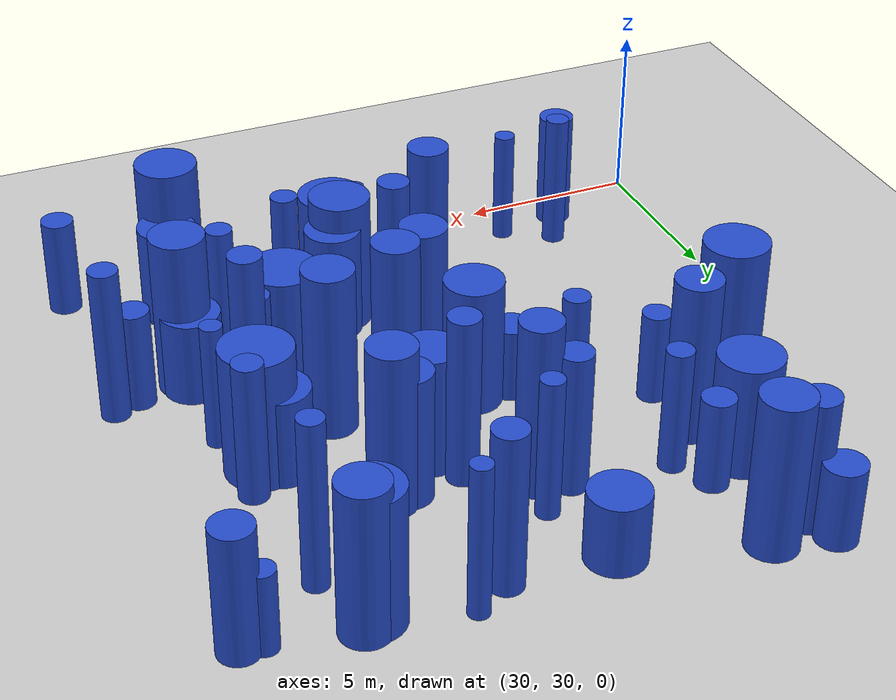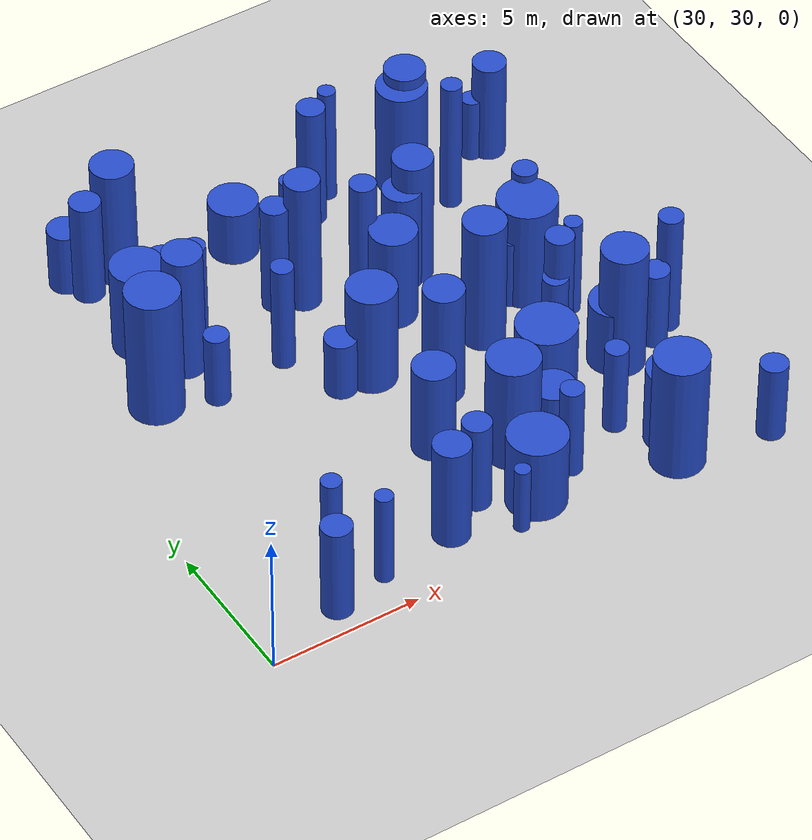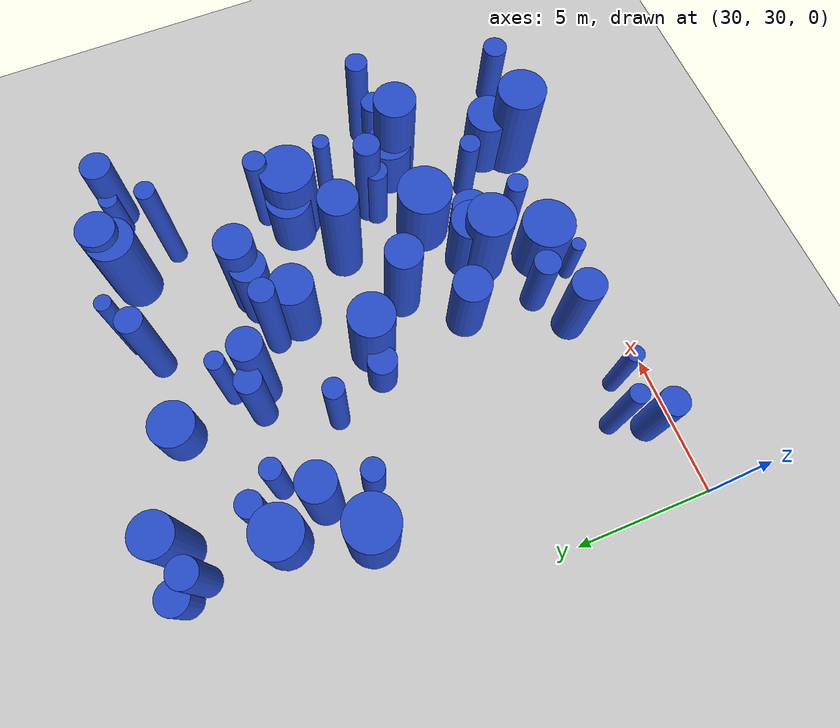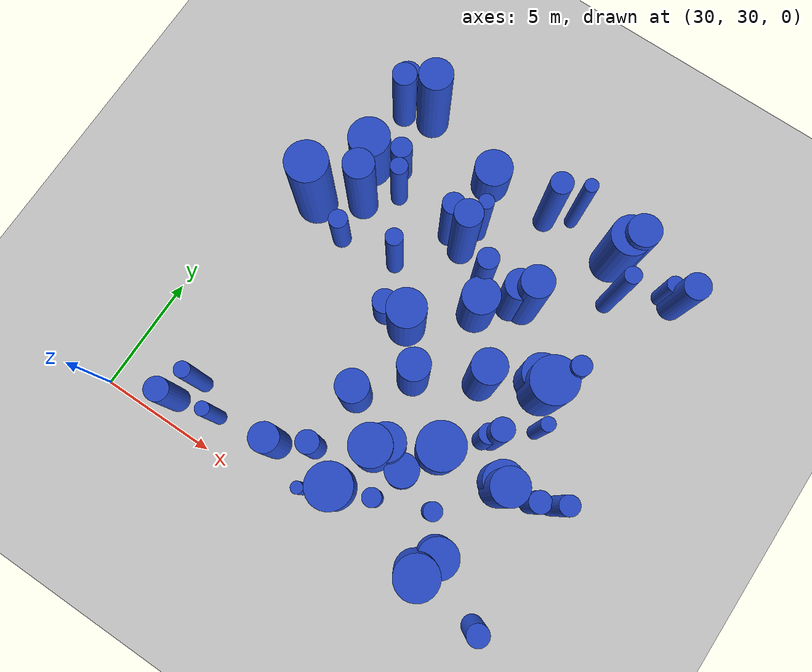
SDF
<sdf version="1.6">
 <world name="default">
  <model name="ground_plane">
   <static>1</static>
   <link name="link">
    <collision name="collision">
     <geometry><plane><normal>0 0 1</normal><size>100 100</size></plane></geometry>
     <surface><friction><ode><mu>100</mu><mu2>50</mu2></ode></friction></surface>
    </collision>
    <visual name="visual">
     <cast_shadows>0</cast_shadows>
     <geometry><plane><normal>0 0 1</normal><size>100 100</size></plane></geometry>
     <material>
      <script><uri>file://media/materials/scripts/gazebo.material</uri><name>Gazebo/Grey</name></script>
     </material>
    </visual>
   </link>
  </model>
  <model name="1">
   <static>0</static>
   <link name="link">
    <inertial>
     <mass>2</mass>
     <inertia><ixx>4.03627</ixx><ixy>0</ixy><ixz>0</ixz><iyy>4.03627</iyy><iyz>0</iyz><izz>0.190273</izz></inertia>
    </inertial>
    <collision name="collision">
     <geometry><cylinder><length>4.86279</length><radius>0.436203</radius></cylinder></geometry>
     <surface><contact><collide_without_contact>1</collide_without_contact></contact></surface>
    </collision>
    <visual name="visual">
     <geometry><cylinder><length>4.86279</length><radius>0.436203</radius></cylinder></geometry>
     <material>
      <script><uri>file://media/materials/scripts/gazebo.material</uri><name>Gazebo/Blue</name></script>
     </material>
    </visual>
    <gravity>0</gravity>
   </link>
   <pose>40.5806 41.9272 2.4314 0 -0 0</pose>
  </model>
  <model name="6">
   <static>0</static>
   <link name="link">
    <inertial>
     <mass>2</mass>
     <inertia><ixx>1.45049</ixx><ixy>0</ixy><ixz>0</ixz><iyy>1.45049</iyy><iyz>0</iyz><izz>0.206698</izz></inertia>
    </inertial>
    <collision name="collision">
     <geometry><cylinder><length>2.84303</length><radius>0.454641</radius></cylinder></geometry>
     <surface><contact><collide_without_contact>1</collide_without_contact></contact></surface>
    </collision>
    <visual name="visual">
     <geometry><cylinder><length>2.84303</length><radius>0.454641</radius></cylinder></geometry>
     <material>
      <script><uri>file://media/materials/scripts/gazebo.material</uri><name>Gazebo/Blue</name></script>
     </material>
    </visual>
    <gravity>0</gravity>
   </link>
   <pose>47.896 30.2729 1.42152 0 -0 0</pose>
  </model>
  <model name="35">
   <static>0</static>
   <link name="link">
    <inertial>
     <mass>2</mass>
     <inertia><ixx>4.21675</ixx><ixy>0</ixy><ixz>0</ixz><iyy>4.21675</iyy><iyz>0</iyz><izz>0.78183</izz></inertia>
    </inertial>
    <collision name="collision">
     <geometry><cylinder><length>4.79114</length><radius>0.884211</radius></cylinder></geometry>
     <surface><contact><collide_without_contact>1</collide_without_contact></contact></surface>
    </collision>
    <visual name="visual">
     <geometry><cylinder><length>4.79114</length><radius>0.884211</radius></cylinder></geometry>
     <material>
      <script><uri>file://media/materials/scripts/gazebo.material</uri><name>Gazebo/Blue</name></script>
     </material>
    </visual>
    <gravity>0</gravity>
   </link>
   <pose>32.6922 41.2787 2.39557 0 -0 0</pose>
  </model>
  <model name="36">
   <static>0</static>
   <link name="link">
    <inertial>
     <mass>2</mass>
     <inertia><ixx>2.9244</ixx><ixy>0</ixy><ixz>0</ixz><iyy>2.9244</iyy><iyz>0</iyz><izz>0.736061</izz></inertia>
    </inertial>
    <collision name="collision">
     <geometry><cylinder><length>3.9164</length><radius>0.85794</radius></cylinder></geometry>
     <surface><contact><collide_without_contact>1</collide_without_contact></contact></surface>
    </collision>
    <visual name="visual">
     <geometry><cylinder><length>3.9164</length><radius>0.85794</radius></cylinder></geometry>
     <material>
      <script><uri>file://media/materials/scripts/gazebo.material</uri><name>Gazebo/Blue</name></script>
     </material>
    </visual>
    <gravity>0</gravity>
   </link>
   <pose>40.7714 33.7648 1.9582 0 -0 0</pose>
  </model>
  <model name="41">
   <static>0</static>
   <link name="link">
    <inertial>
     <mass>2</mass>
     <inertia><ixx>1.78705</ixx><ixy>0</ixy><ixz>0</ixz><iyy>1.78705</iyy><iyz>0</iyz><izz>0.141727</izz></inertia>
    </inertial>
    <collision name="collision">
     <geometry><cylinder><length>3.20891</length><radius>0.376467</radius></cylinder></geometry>
     <surface><contact><collide_without_contact>1</collide_without_contact></contact></surface>
    </collision>
    <visual name="visual">
     <geometry><cylinder><length>3.20891</length><radius>0.376467</radius></cylinder></geometry>
     <material>
      <script><uri>file://media/materials/scripts/gazebo.material</uri><name>Gazebo/Blue</name></script>
     </material>
    </visual>
    <gravity>0</gravity>
   </link>
   <pose>44.0414 33.0618 1.60446 0 -0 0</pose>
  </model>
  <model name="57">
   <static>0</static>
   <link name="link">
    <inertial>
     <mass>2</mass>
     <inertia><ixx>2.77459</ixx><ixy>0</ixy><ixz>0</ixz><iyy>2.77459</iyy><iyz>0</iyz><izz>0.103834</izz></inertia>
    </inertial>
    <collision name="collision">
     <geometry><cylinder><length>4.04179</length><radius>0.322234</radius></cylinder></geometry>
     <surface><contact><collide_without_contact>1</collide_without_contact></contact></surface>
    </collision>
    <visual name="visual">
     <geometry><cylinder><length>4.04179</length><radius>0.322234</radius></cylinder></geometry>
     <material>
      <script><uri>file://media/materials/scripts/gazebo.material</uri><name>Gazebo/Blue</name></script>
     </material>
    </visual>
    <gravity>0</gravity>
   </link>
   <pose>39.2208 44.0549 2.02089 0 -0 0</pose>
  </model>
  <model name="59">
   <static>0</static>
   <link name="link">
    <inertial>
     <mass>2</mass>
     <inertia><ixx>3.58918</ixx><ixy>0</ixy><ixz>0</ixz><iyy>3.58918</iyy><iyz>0</iyz><izz>0.215934</izz></inertia>
    </inertial>
    <collision name="collision">
     <geometry><cylinder><length>4.57026</length><radius>0.464687</radius></cylinder></geometry>
     <surface><contact><collide_without_contact>1</collide_without_contact></contact></surface>
    </collision>
    <visual name="visual">
     <geometry><cylinder><length>4.57026</length><radius>0.464687</radius></cylinder></geometry>
     <material>
      <script><uri>file://media/materials/scripts/gazebo.material</uri><name>Gazebo/Blue</name></script>
     </material>
    </visual>
    <gravity>0</gravity>
   </link>
   <pose>41.2828 46.1145 2.28513 0 -0 0</pose>
  </model>
  <model name="69">
   <static>0</static>
   <link name="link">
    <inertial>
     <mass>2</mass>
     <inertia><ixx>2.64147</ixx><ixy>0</ixy><ixz>0</ixz><iyy>2.64147</iyy><iyz>0</iyz><izz>0.663706</izz></inertia>
    </inertial>
    <collision name="collision">
     <geometry><cylinder><length>3.72259</length><radius>0.814681</radius></cylinder></geometry>
     <surface><contact><collide_without_contact>1</collide_without_contact></contact></surface>
    </collision>
    <visual name="visual">
     <geometry><cylinder><length>3.72259</length><radius>0.814681</radius></cylinder></geometry>
     <material>
      <script><uri>file://media/materials/scripts/gazebo.material</uri><name>Gazebo/Blue</name></script>
     </material>
    </visual>
    <gravity>0</gravity>
   </link>
   <pose>38.9608 38.8646 1.8613 0 -0 0</pose>
  </model>
  <model name="83">
   <static>0</static>
   <link name="link">
    <inertial>
     <mass>2</mass>
     <inertia>
      <ixx>0.968813</ixx>
      <ixy>0</ixy>
      <ixz>0</ixz>
      <iyy>0.968813</iyy>
      <iyz>0</iyz>
      <izz>0.493348</izz>
     </inertia>
    </inertial>
    <collision name="collision">
     <geometry><cylinder><length>2.08155</length><radius>0.702387</radius></cylinder></geometry>
     <surface><contact><collide_without_contact>1</collide_without_contact></contact></surface>
    </collision>
    <visual name="visual">
     <geometry><cylinder><length>2.08155</length><radius>0.702387</radius></cylinder></geometry>
     <material>
      <script><uri>file://media/materials/scripts/gazebo.material</uri><name>Gazebo/Blue</name></script>
     </material>
    </visual>
    <gravity>0</gravity>
   </link>
   <pose>42.2079 33.7163 1.04077 0 -0 0</pose>
  </model>
  <model name="85">
   <static>0</static>
   <link name="link">
    <inertial>
     <mass>2</mass>
     <inertia><ixx>2.60026</ixx><ixy>0</ixy><ixz>0</ixz><iyy>2.60026</iyy><iyz>0</iyz><izz>0.409389</izz></inertia>
    </inertial>
    <collision name="collision">
     <geometry><cylinder><length>3.79122</length><radius>0.639835</radius></cylinder></geometry>
     <surface><contact><collide_without_contact>1</collide_without_contact></contact></surface>
    </collision>
    <visual name="visual">
     <geometry><cylinder><length>3.79122</length><radius>0.639835</radius></cylinder></geometry>
     <material>
      <script><uri>file://media/materials/scripts/gazebo.material</uri><name>Gazebo/Blue</name></script>
     </material>
    </visual>
    <gravity>0</gravity>
   </link>
   <pose>42.1021 42.0806 1.89561 0 -0 0</pose>
  </model>
  <model name="89">
   <static>0</static>
   <link name="link">
    <inertial>
     <mass>2</mass>
     <inertia><ixx>3.96384</ixx><ixy>0</ixy><ixz>0</ixz><iyy>3.96384</iyy><iyz>0</iyz><izz>0.43913</izz></inertia>
    </inertial>
    <collision name="collision">
     <geometry><cylinder><length>4.73979</length><radius>0.662669</radius></cylinder></geometry>
     <surface><contact><collide_without_contact>1</collide_without_contact></contact></surface>
    </collision>
    <visual name="visual">
     <geometry><cylinder><length>4.73979</length><radius>0.662669</radius></cylinder></geometry>
     <material>
      <script><uri>file://media/materials/scripts/gazebo.material</uri><name>Gazebo/Blue</name></script>
     </material>
    </visual>
    <gravity>0</gravity>
   </link>
   <pose>42.6006 42.2495 2.3699 0 -0 0</pose>
  </model>
  <model name="107">
   <static>0</static>
   <link name="link">
    <inertial>
     <mass>2</mass>
     <inertia><ixx>2.51062</ixx><ixy>0</ixy><ixz>0</ixz><iyy>2.51062</iyy><iyz>0</iyz><izz>0.36402</izz></inertia>
    </inertial>
    <collision name="collision">
     <geometry><cylinder><length>3.73787</length><radius>0.603341</radius></cylinder></geometry>
     <surface><contact><collide_without_contact>1</collide_without_contact></contact></surface>
    </collision>
    <visual name="visual">
     <geometry><cylinder><length>3.73787</length><radius>0.603341</radius></cylinder></geometry>
     <material>
      <script><uri>file://media/materials/scripts/gazebo.material</uri><name>Gazebo/Blue</name></script>
     </material>
    </visual>
    <gravity>0</gravity>
   </link>
   <pose>37.3003 31.7893 1.86893 0 -0 0</pose>
  </model>
  <model name="120">
   <static>0</static>
   <link name="link">
    <inertial>
     <mass>2</mass>
     <inertia><ixx>2.98502</ixx><ixy>0</ixy><ixz>0</ixz><iyy>2.98502</iyy><iyz>0</iyz><izz>0.697488</izz></inertia>
    </inertial>
    <collision name="collision">
     <geometry><cylinder><length>3.97714</length><radius>0.835157</radius></cylinder></geometry>
     <surface><contact><collide_without_contact>1</collide_without_contact></contact></surface>
    </collision>
    <visual name="visual">
     <geometry><cylinder><length>3.97714</length><radius>0.835157</radius></cylinder></geometry>
     <material>
      <script><uri>file://media/materials/scripts/gazebo.material</uri><name>Gazebo/Blue</name></script>
     </material>
    </visual>
    <gravity>0</gravity>
   </link>
   <pose>44.6255 46.0701 1.98857 0 -0 0</pose>
  </model>
  <model name="137">
   <static>0</static>
   <link name="link">
    <inertial>
     <mass>2</mass>
     <inertia><ixx>2.55399</ixx><ixy>0</ixy><ixz>0</ixz><iyy>2.55399</iyy><iyz>0</iyz><izz>0.260418</izz></inertia>
    </inertial>
    <collision name="collision">
     <geometry><cylinder><length>3.81349</length><radius>0.510311</radius></cylinder></geometry>
     <surface><contact><collide_without_contact>1</collide_without_contact></contact></surface>
    </collision>
    <visual name="visual">
     <geometry><cylinder><length>3.81349</length><radius>0.510311</radius></cylinder></geometry>
     <material>
      <script><uri>file://media/materials/scripts/gazebo.material</uri><name>Gazebo/Blue</name></script>
     </material>
    </visual>
    <gravity>0</gravity>
   </link>
   <pose>33.5214 46.825 1.90674 0 -0 0</pose>
  </model>
  <model name="141">
   <static>0</static>
   <link name="link">
    <inertial>
     <mass>2</mass>
     <inertia><ixx>2.30961</ixx><ixy>0</ixy><ixz>0</ixz><iyy>2.30961</iyy><iyz>0</iyz><izz>0.6002</izz></inertia>
    </inertial>
    <collision name="collision">
     <geometry><cylinder><length>3.47233</length><radius>0.774725</radius></cylinder></geometry>
     <surface><contact><collide_without_contact>1</collide_without_contact></contact></surface>
    </collision>
    <visual name="visual">
     <geometry><cylinder><length>3.47233</length><radius>0.774725</radius></cylinder></geometry>
     <material>
      <script><uri>file://media/materials/scripts/gazebo.material</uri><name>Gazebo/Blue</name></script>
     </material>
    </visual>
    <gravity>0</gravity>
   </link>
   <pose>41.0566 40.9389 1.73616 0 -0 0</pose>
  </model>
  <model name="143">
   <static>0</static>
   <link name="link">
    <inertial>
     <mass>2</mass>
     <inertia><ixx>2.1021</ixx><ixy>0</ixy><ixz>0</ixz><iyy>2.1021</iyy><iyz>0</iyz><izz>0.471782</izz></inertia>
    </inertial>
    <collision name="collision">
     <geometry><cylinder><length>3.34623</length><radius>0.686864</radius></cylinder></geometry>
     <surface><contact><collide_without_contact>1</collide_without_contact></contact></surface>
    </collision>
    <visual name="visual">
     <geometry><cylinder><length>3.34623</length><radius>0.686864</radius></cylinder></geometry>
     <material>
      <script><uri>file://media/materials/scripts/gazebo.material</uri><name>Gazebo/Blue</name></script>
     </material>
    </visual>
    <gravity>0</gravity>
   </link>
   <pose>38.8841 35.253 1.67312 0 -0 0</pose>
  </model>
  <model name="154">
   <static>0</static>
   <link name="link">
    <inertial>
     <mass>2</mass>
     <inertia><ixx>2.21844</ixx><ixy>0</ixy><ixz>0</ixz><iyy>2.21844</iyy><iyz>0</iyz><izz>0.090353</izz></inertia>
    </inertial>
    <collision name="collision">
     <geometry><cylinder><length>3.61104</length><radius>0.300588</radius></cylinder></geometry>
     <surface><contact><collide_without_contact>1</collide_without_contact></contact></surface>
    </collision>
    <visual name="visual">
     <geometry><cylinder><length>3.61104</length><radius>0.300588</radius></cylinder></geometry>
     <material>
      <script><uri>file://media/materials/scripts/gazebo.material</uri><name>Gazebo/Blue</name></script>
     </material>
    </visual>
    <gravity>0</gravity>
   </link>
   <pose>45.8422 38.1421 1.80552 0 -0 0</pose>
  </model>
  <model name="156">
   <static>0</static>
   <link name="link">
    <inertial>
     <mass>2</mass>
     <inertia>
      <ixx>0.966781</ixx>
      <ixy>0</ixy>
      <ixz>0</ixz>
      <iyy>0.966781</iyy>
      <iyz>0</iyz>
      <izz>0.122918</izz>
     </inertia>
    </inertial>
    <collision name="collision">
     <geometry><cylinder><length>2.33065</length><radius>0.350596</radius></cylinder></geometry>
     <surface><contact><collide_without_contact>1</collide_without_contact></contact></surface>
    </collision>
    <visual name="visual">
     <geometry><cylinder><length>2.33065</length><radius>0.350596</radius></cylinder></geometry>
     <material>
      <script><uri>file://media/materials/scripts/gazebo.material</uri><name>Gazebo/Blue</name></script>
     </material>
    </visual>
    <gravity>0</gravity>
   </link>
   <pose>47.2122 45.9744 1.16533 0 -0 0</pose>
  </model>
  <model name="174">
   <static>0</static>
   <link name="link">
    <inertial>
     <mass>2</mass>
     <inertia><ixx>2.17857</ixx><ixy>0</ixy><ixz>0</ixz><iyy>2.17857</iyy><iyz>0</iyz><izz>0.134831</izz></inertia>
    </inertial>
    <collision name="collision">
     <geometry><cylinder><length>3.55906</length><radius>0.367193</radius></cylinder></geometry>
     <surface><contact><collide_without_contact>1</collide_without_contact></contact></surface>
    </collision>
    <visual name="visual">
     <geometry><cylinder><length>3.55906</length><radius>0.367193</radius></cylinder></geometry>
     <material>
      <script><uri>file://media/materials/scripts/gazebo.material</uri><name>Gazebo/Blue</name></script>
     </material>
    </visual>
    <gravity>0</gravity>
   </link>
   <pose>35.4652 43.5282 1.77953 0 -0 0</pose>
  </model>
  <model name="177">
   <static>0</static>
   <link name="link">
    <inertial>
     <mass>2</mass>
     <inertia><ixx>3.86454</ixx><ixy>0</ixy><ixz>0</ixz><iyy>3.86454</iyy><iyz>0</iyz><izz>0.413248</izz></inertia>
    </inertial>
    <collision name="collision">
     <geometry><cylinder><length>4.68482</length><radius>0.642844</radius></cylinder></geometry>
     <surface><contact><collide_without_contact>1</collide_without_contact></contact></surface>
    </collision>
    <visual name="visual">
     <geometry><cylinder><length>4.68482</length><radius>0.642844</radius></cylinder></geometry>
     <material>
      <script><uri>file://media/materials/scripts/gazebo.material</uri><name>Gazebo/Blue</name></script>
     </material>
    </visual>
    <gravity>0</gravity>
   </link>
   <pose>34.3715 42.3598 2.34241 0 -0 0</pose>
  </model>
  <model name="178">
   <static>0</static>
   <link name="link">
    <inertial>
     <mass>2</mass>
     <inertia><ixx>2.85881</ixx><ixy>0</ixy><ixz>0</ixz><iyy>2.85881</iyy><iyz>0</iyz><izz>0.214801</izz></inertia>
    </inertial>
    <collision name="collision">
     <geometry><cylinder><length>4.06306</length><radius>0.463466</radius></cylinder></geometry>
     <surface><contact><collide_without_contact>1</collide_without_contact></contact></surface>
    </collision>
    <visual name="visual">
     <geometry><cylinder><length>4.06306</length><radius>0.463466</radius></cylinder></geometry>
     <material>
      <script><uri>file://media/materials/scripts/gazebo.material</uri><name>Gazebo/Blue</name></script>
     </material>
    </visual>
    <gravity>0</gravity>
   </link>
   <pose>38.2129 43.2725 2.03153 0 -0 0</pose>
  </model>
  <model name="184">
   <static>0</static>
   <link name="link">
    <inertial>
     <mass>2</mass>
     <inertia><ixx>3.55233</ixx><ixy>0</ixy><ixz>0</ixz><iyy>3.55233</iyy><iyz>0</iyz><izz>0.501542</izz></inertia>
    </inertial>
    <collision name="collision">
     <geometry><cylinder><length>4.45077</length><radius>0.708196</radius></cylinder></geometry>
     <surface><contact><collide_without_contact>1</collide_without_contact></contact></surface>
    </collision>
    <visual name="visual">
     <geometry><cylinder><length>4.45077</length><radius>0.708196</radius></cylinder></geometry>
     <material>
      <script><uri>file://media/materials/scripts/gazebo.material</uri><name>Gazebo/Blue</name></script>
     </material>
    </visual>
    <gravity>0</gravity>
   </link>
   <pose>34.7456 47.2366 2.22538 0 -0 0</pose>
  </model>
  <model name="193">
   <static>0</static>
   <link name="link">
    <inertial>
     <mass>2</mass>
     <inertia><ixx>3.40262</ixx><ixy>0</ixy><ixz>0</ixz><iyy>3.40262</iyy><iyz>0</iyz><izz>0.460705</izz></inertia>
    </inertial>
    <collision name="collision">
     <geometry><cylinder><length>4.36275</length><radius>0.678752</radius></cylinder></geometry>
     <surface><contact><collide_without_contact>1</collide_without_contact></contact></surface>
    </collision>
    <visual name="visual">
     <geometry><cylinder><length>4.36275</length><radius>0.678752</radius></cylinder></geometry>
     <material>
      <script><uri>file://media/materials/scripts/gazebo.material</uri><name>Gazebo/Blue</name></script>
     </material>
    </visual>
    <gravity>0</gravity>
   </link>
   <pose>44.9178 46.3504 2.18138 0 -0 0</pose>
  </model>
  <model name="200">
   <static>0</static>
   <link name="link">
    <inertial>
     <mass>2</mass>
     <inertia><ixx>1.00669</ixx><ixy>0</ixy><ixz>0</ixz><iyy>1.00669</iyy><iyz>0</iyz><izz>0.662145</izz></inertia>
    </inertial>
    <collision name="collision">
     <geometry><cylinder><length>2.01338</length><radius>0.813723</radius></cylinder></geometry>
     <surface><contact><collide_without_contact>1</collide_without_contact></contact></surface>
    </collision>
    <visual name="visual">
     <geometry><cylinder><length>2.01338</length><radius>0.813723</radius></cylinder></geometry>
     <material>
      <script><uri>file://media/materials/scripts/gazebo.material</uri><name>Gazebo/Blue</name></script>
     </material>
    </visual>
    <gravity>0</gravity>
   </link>
   <pose>38.434 46.1925 1.00669 0 -0 0</pose>
  </model>
  <model name="206">
   <static>0</static>
   <link name="link">
    <inertial>
     <mass>2</mass>
     <inertia><ixx>4.29694</ixx><ixy>0</ixy><ixz>0</ixz><iyy>4.29694</iyy><iyz>0</iyz><izz>0.331563</izz></inertia>
    </inertial>
    <collision name="collision">
     <geometry><cylinder><length>4.97865</length><radius>0.575815</radius></cylinder></geometry>
     <surface><contact><collide_without_contact>1</collide_without_contact></contact></surface>
    </collision>
    <visual name="visual">
     <geometry><cylinder><length>4.97865</length><radius>0.575815</radius></cylinder></geometry>
     <material>
      <script><uri>file://media/materials/scripts/gazebo.material</uri><name>Gazebo/Blue</name></script>
     </material>
    </visual>
    <gravity>0</gravity>
   </link>
   <pose>39.023 42.9674 2.48932 0 -0 0</pose>
  </model>
  <model name="210">
   <static>0</static>
   <link name="link">
    <inertial>
     <mass>2</mass>
     <inertia><ixx>1.67791</ixx><ixy>0</ixy><ixz>0</ixz><iyy>1.67791</iyy><iyz>0</iyz><izz>0.671933</izz></inertia>
    </inertial>
    <collision name="collision">
     <geometry><cylinder><length>2.83754</length><radius>0.819715</radius></cylinder></geometry>
     <surface><contact><collide_without_contact>1</collide_without_contact></contact></surface>
    </collision>
    <visual name="visual">
     <geometry><cylinder><length>2.83754</length><radius>0.819715</radius></cylinder></geometry>
     <material>
      <script><uri>file://media/materials/scripts/gazebo.material</uri><name>Gazebo/Blue</name></script>
     </material>
    </visual>
    <gravity>0</gravity>
   </link>
   <pose>45.1725 31.7449 1.41877 0 -0 0</pose>
  </model>
  <model name="221">
   <static>0</static>
   <link name="link">
    <inertial>
     <mass>2</mass>
     <inertia><ixx>1.49746</ixx><ixy>0</ixy><ixz>0</ixz><iyy>1.49746</iyy><iyz>0</iyz><izz>0.205726</izz></inertia>
    </inertial>
    <collision name="collision">
     <geometry><cylinder><length>2.89268</length><radius>0.45357</radius></cylinder></geometry>
     <surface><contact><collide_without_contact>1</collide_without_contact></contact></surface>
    </collision>
    <visual name="visual">
     <geometry><cylinder><length>2.89268</length><radius>0.45357</radius></cylinder></geometry>
     <material>
      <script><uri>file://media/materials/scripts/gazebo.material</uri><name>Gazebo/Blue</name></script>
     </material>
    </visual>
    <gravity>0</gravity>
   </link>
   <pose>47.2174 35.6117 1.44634 0 -0 0</pose>
  </model>
  <model name="230">
   <static>0</static>
   <link name="link">
    <inertial>
     <mass>2</mass>
     <inertia><ixx>1.90714</ixx><ixy>0</ixy><ixz>0</ixz><iyy>1.90714</iyy><iyz>0</iyz><izz>0.144915</izz></inertia>
    </inertial>
    <collision name="collision">
     <geometry><cylinder><length>3.31784</length><radius>0.380678</radius></cylinder></geometry>
     <surface><contact><collide_without_contact>1</collide_without_contact></contact></surface>
    </collision>
    <visual name="visual">
     <geometry><cylinder><length>3.31784</length><radius>0.380678</radius></cylinder></geometry>
     <material>
      <script><uri>file://media/materials/scripts/gazebo.material</uri><name>Gazebo/Blue</name></script>
     </material>
    </visual>
    <gravity>0</gravity>
   </link>
   <pose>41.8607 32.2136 1.65892 0 -0 0</pose>
  </model>
  <model name="242">
   <static>0</static>
   <link name="link">
    <inertial>
     <mass>2</mass>
     <inertia><ixx>1.71599</ixx><ixy>0</ixy><ixz>0</ixz><iyy>1.71599</iyy><iyz>0</iyz><izz>0.930777</izz></inertia>
    </inertial>
    <collision name="collision">
     <geometry><cylinder><length>2.73927</length><radius>0.964768</radius></cylinder></geometry>
     <surface><contact><collide_without_contact>1</collide_without_contact></contact></surface>
    </collision>
    <visual name="visual">
     <geometry><cylinder><length>2.73927</length><radius>0.964768</radius></cylinder></geometry>
     <material>
      <script><uri>file://media/materials/scripts/gazebo.material</uri><name>Gazebo/Blue</name></script>
     </material>
    </visual>
    <gravity>0</gravity>
   </link>
   <pose>40.244 31.6401 1.36964 0 -0 0</pose>
  </model>
  <model name="246">
   <static>0</static>
   <link name="link">
    <inertial>
     <mass>2</mass>
     <inertia><ixx>3.23288</ixx><ixy>0</ixy><ixz>0</ixz><iyy>3.23288</iyy><iyz>0</iyz><izz>0.439316</izz></inertia>
    </inertial>
    <collision name="collision">
     <geometry><cylinder><length>4.25198</length><radius>0.662809</radius></cylinder></geometry>
     <surface><contact><collide_without_contact>1</collide_without_contact></contact></surface>
    </collision>
    <visual name="visual">
     <geometry><cylinder><length>4.25198</length><radius>0.662809</radius></cylinder></geometry>
     <material>
      <script><uri>file://media/materials/scripts/gazebo.material</uri><name>Gazebo/Blue</name></script>
     </material>
    </visual>
    <gravity>0</gravity>
   </link>
   <pose>40.4518 37.1286 2.12599 0 -0 0</pose>
  </model>
  <model name="262">
   <static>0</static>
   <link name="link">
    <inertial>
     <mass>2</mass>
     <inertia>
      <ixx>0.891296</ixx>
      <ixy>0</ixy>
      <ixz>0</ixz>
      <iyy>0.891296</iyy>
      <iyz>0</iyz>
      <izz>0.278843</izz>
     </inertia>
    </inertial>
    <collision name="collision">
     <geometry><cylinder><length>2.12397</length><radius>0.528056</radius></cylinder></geometry>
     <surface><contact><collide_without_contact>1</collide_without_contact></contact></surface>
    </collision>
    <visual name="visual">
     <geometry><cylinder><length>2.12397</length><radius>0.528056</radius></cylinder></geometry>
     <material>
      <script><uri>file://media/materials/scripts/gazebo.material</uri><name>Gazebo/Blue</name></script>
     </material>
    </visual>
    <gravity>0</gravity>
   </link>
   <pose>37.8776 38.9178 1.06198 0 -0 0</pose>
  </model>
  <model name="269">
   <static>0</static>
   <link name="link">
    <inertial>
     <mass>2</mass>
     <inertia><ixx>3.70698</ixx><ixy>0</ixy><ixz>0</ixz><iyy>3.70698</iyy><iyz>0</iyz><izz>0.215793</izz></inertia>
    </inertial>
    <collision name="collision">
     <geometry><cylinder><length>4.64699</length><radius>0.464535</radius></cylinder></geometry>
     <surface><contact><collide_without_contact>1</collide_without_contact></contact></surface>
    </collision>
    <visual name="visual">
     <geometry><cylinder><length>4.64699</length><radius>0.464535</radius></cylinder></geometry>
     <material>
      <script><uri>file://media/materials/scripts/gazebo.material</uri><name>Gazebo/Blue</name></script>
     </material>
    </visual>
    <gravity>0</gravity>
   </link>
   <pose>44.4881 36.8813 2.3235 0 -0 0</pose>
  </model>
  <model name="273">
   <static>0</static>
   <link name="link">
    <inertial>
     <mass>2</mass>
     <inertia><ixx>3.43065</ixx><ixy>0</ixy><ixz>0</ixz><iyy>3.43065</iyy><iyz>0</iyz><izz>0.772202</izz></inertia>
    </inertial>
    <collision name="collision">
     <geometry><cylinder><length>4.27402</length><radius>0.87875</radius></cylinder></geometry>
     <surface><contact><collide_without_contact>1</collide_without_contact></contact></surface>
    </collision>
    <visual name="visual">
     <geometry><cylinder><length>4.27402</length><radius>0.87875</radius></cylinder></geometry>
     <material>
      <script><uri>file://media/materials/scripts/gazebo.material</uri><name>Gazebo/Blue</name></script>
     </material>
    </visual>
    <gravity>0</gravity>
   </link>
   <pose>44.8117 30.7927 2.13701 0 -0 0</pose>
  </model>
  <model name="274">
   <static>0</static>
   <link name="link">
    <inertial>
     <mass>2</mass>
     <inertia><ixx>2.77826</ixx><ixy>0</ixy><ixz>0</ixz><iyy>2.77826</iyy><iyz>0</iyz><izz>0.168136</izz></inertia>
    </inertial>
    <collision name="collision">
     <geometry><cylinder><length>4.02059</length><radius>0.410044</radius></cylinder></geometry>
     <surface><contact><collide_without_contact>1</collide_without_contact></contact></surface>
    </collision>
    <visual name="visual">
     <geometry><cylinder><length>4.02059</length><radius>0.410044</radius></cylinder></geometry>
     <material>
      <script><uri>file://media/materials/scripts/gazebo.material</uri><name>Gazebo/Blue</name></script>
     </material>
    </visual>
    <gravity>0</gravity>
   </link>
   <pose>45.6892 40.6256 2.0103 0 -0 0</pose>
  </model>
  <model name="275">
   <static>0</static>
   <link name="link">
    <inertial>
     <mass>2</mass>
     <inertia><ixx>1.23865</ixx><ixy>0</ixy><ixz>0</ixz><iyy>1.23865</iyy><iyz>0</iyz><izz>0.163326</izz></inertia>
    </inertial>
    <collision name="collision">
     <geometry><cylinder><length>2.63475</length><radius>0.404136</radius></cylinder></geometry>
     <surface><contact><collide_without_contact>1</collide_without_contact></contact></surface>
    </collision>
    <visual name="visual">
     <geometry><cylinder><length>2.63475</length><radius>0.404136</radius></cylinder></geometry>
     <material>
      <script><uri>file://media/materials/scripts/gazebo.material</uri><name>Gazebo/Blue</name></script>
     </material>
    </visual>
    <gravity>0</gravity>
   </link>
   <pose>34.4676 40.5857 1.31738 0 -0 0</pose>
  </model>
  <model name="281">
   <static>0</static>
   <link name="link">
    <inertial>
     <mass>2</mass>
     <inertia>
      <ixx>0.999313</ixx>
      <ixy>0</ixy>
      <ixz>0</ixz>
      <iyy>0.999313</iyy>
      <iyz>0</iyz>
      <izz>0.0661797</izz>
     </inertia>
    </inertial>
    <collision name="collision">
     <geometry><cylinder><length>2.40777</length><radius>0.257254</radius></cylinder></geometry>
     <surface><contact><collide_without_contact>1</collide_without_contact></contact></surface>
    </collision>
    <visual name="visual">
     <geometry><cylinder><length>2.40777</length><radius>0.257254</radius></cylinder></geometry>
     <material>
      <script><uri>file://media/materials/scripts/gazebo.material</uri><name>Gazebo/Blue</name></script>
     </material>
    </visual>
    <gravity>0</gravity>
   </link>
   <pose>39.2349 30.9108 1.20388 0 -0 0</pose>
  </model>
  <model name="307">
   <static>0</static>
   <link name="link">
    <inertial>
     <mass>2</mass>
     <inertia><ixx>1.44383</ixx><ixy>0</ixy><ixz>0</ixz><iyy>1.44383</iyy><iyz>0</iyz><izz>0.682203</izz></inertia>
    </inertial>
    <collision name="collision">
     <geometry><cylinder><length>2.57223</length><radius>0.825956</radius></cylinder></geometry>
     <surface><contact><collide_without_contact>1</collide_without_contact></contact></surface>
    </collision>
    <visual name="visual">
     <geometry><cylinder><length>2.57223</length><radius>0.825956</radius></cylinder></geometry>
     <material>
      <script><uri>file://media/materials/scripts/gazebo.material</uri><name>Gazebo/Blue</name></script>
     </material>
    </visual>
    <gravity>0</gravity>
   </link>
   <pose>44.6831 39.8866 1.28611 0 -0 0</pose>
  </model>
  <model name="326">
   <static>0</static>
   <link name="link">
    <inertial>
     <mass>2</mass>
     <inertia><ixx>4.00392</ixx><ixy>0</ixy><ixz>0</ixz><iyy>4.00392</iyy><iyz>0</iyz><izz>0.121995</izz></inertia>
    </inertial>
    <collision name="collision">
     <geometry><cylinder><length>4.8639</length><radius>0.349278</radius></cylinder></geometry>
     <surface><contact><collide_without_contact>1</collide_without_contact></contact></surface>
    </collision>
    <visual name="visual">
     <geometry><cylinder><length>4.8639</length><radius>0.349278</radius></cylinder></geometry>
     <material>
      <script><uri>file://media/materials/scripts/gazebo.material</uri><name>Gazebo/Blue</name></script>
     </material>
    </visual>
    <gravity>0</gravity>
   </link>
   <pose>45.4091 44.3863 2.43195 0 -0 0</pose>
  </model>
  <model name="333">
   <static>0</static>
   <link name="link">
    <inertial>
     <mass>2</mass>
     <inertia><ixx>4.08671</ixx><ixy>0</ixy><ixz>0</ixz><iyy>4.08671</iyy><iyz>0</iyz><izz>0.49512</izz></inertia>
    </inertial>
    <collision name="collision">
     <geometry><cylinder><length>4.79947</length><radius>0.703648</radius></cylinder></geometry>
     <surface><contact><collide_without_contact>1</collide_without_contact></contact></surface>
    </collision>
    <visual name="visual">
     <geometry><cylinder><length>4.79947</length><radius>0.703648</radius></cylinder></geometry>
     <material>
      <script><uri>file://media/materials/scripts/gazebo.material</uri><name>Gazebo/Blue</name></script>
     </material>
    </visual>
    <gravity>0</gravity>
   </link>
   <pose>42.8383 38.5361 2.39974 0 -0 0</pose>
  </model>
  <model name="339">
   <static>0</static>
   <link name="link">
    <inertial>
     <mass>2</mass>
     <inertia><ixx>1.27865</ixx><ixy>0</ixy><ixz>0</ixz><iyy>1.27865</iyy><iyz>0</iyz><izz>0.208091</izz></inertia>
    </inertial>
    <collision name="collision">
     <geometry><cylinder><length>2.65474</length><radius>0.45617</radius></cylinder></geometry>
     <surface><contact><collide_without_contact>1</collide_without_contact></contact></surface>
    </collision>
    <visual name="visual">
     <geometry><cylinder><length>2.65474</length><radius>0.45617</radius></cylinder></geometry>
     <material>
      <script><uri>file://media/materials/scripts/gazebo.material</uri><name>Gazebo/Blue</name></script>
     </material>
    </visual>
    <gravity>0</gravity>
   </link>
   <pose>34.8899 44.5615 1.32737 0 -0 0</pose>
  </model>
  <model name="348">
   <static>0</static>
   <link name="link">
    <inertial>
     <mass>2</mass>
     <inertia><ixx>1.91875</ixx><ixy>0</ixy><ixz>0</ixz><iyy>1.91875</iyy><iyz>0</iyz><izz>0.08666</izz></inertia>
    </inertial>
    <collision name="collision">
     <geometry><cylinder><length>3.35447</length><radius>0.294381</radius></cylinder></geometry>
     <surface><contact><collide_without_contact>1</collide_without_contact></contact></surface>
    </collision>
    <visual name="visual">
     <geometry><cylinder><length>3.35447</length><radius>0.294381</radius></cylinder></geometry>
     <material>
      <script><uri>file://media/materials/scripts/gazebo.material</uri><name>Gazebo/Blue</name></script>
     </material>
    </visual>
    <gravity>0</gravity>
   </link>
   <pose>34.6639 31.3634 1.67724 0 -0 0</pose>
  </model>
  <model name="353">
   <static>0</static>
   <link name="link">
    <inertial>
     <mass>2</mass>
     <inertia><ixx>1.33179</ixx><ixy>0</ixy><ixz>0</ixz><iyy>1.33179</iyy><iyz>0</iyz><izz>0.69287</izz></inertia>
    </inertial>
    <collision name="collision">
     <geometry><cylinder><length>2.43149</length><radius>0.832388</radius></cylinder></geometry>
     <surface><contact><collide_without_contact>1</collide_without_contact></contact></surface>
    </collision>
    <visual name="visual">
     <geometry><cylinder><length>2.43149</length><radius>0.832388</radius></cylinder></geometry>
     <material>
      <script><uri>file://media/materials/scripts/gazebo.material</uri><name>Gazebo/Blue</name></script>
     </material>
    </visual>
    <gravity>0</gravity>
   </link>
   <pose>45.6825 35.5544 1.21574 0 -0 0</pose>
  </model>
  <model name="355">
   <static>0</static>
   <link name="link">
    <inertial>
     <mass>2</mass>
     <inertia><ixx>2.01349</ixx><ixy>0</ixy><ixz>0</ixz><iyy>2.01349</iyy><iyz>0</iyz><izz>0.615469</izz></inertia>
    </inertial>
    <collision name="collision">
     <geometry><cylinder><length>3.19915</length><radius>0.784518</radius></cylinder></geometry>
     <surface><contact><collide_without_contact>1</collide_without_contact></contact></surface>
    </collision>
    <visual name="visual">
     <geometry><cylinder><length>3.19915</length><radius>0.784518</radius></cylinder></geometry>
     <material>
      <script><uri>file://media/materials/scripts/gazebo.material</uri><name>Gazebo/Blue</name></script>
     </material>
    </visual>
    <gravity>0</gravity>
   </link>
   <pose>41.1556 34.2202 1.59957 0 -0 0</pose>
  </model>
  <model name="378">
   <static>0</static>
   <link name="link">
    <inertial>
     <mass>2</mass>
     <inertia><ixx>2.74235</ixx><ixy>0</ixy><ixz>0</ixz><iyy>2.74235</iyy><iyz>0</iyz><izz>0.108525</izz></inertia>
    </inertial>
    <collision name="collision">
     <geometry><cylinder><length>4.01604</length><radius>0.329432</radius></cylinder></geometry>
     <surface><contact><collide_without_contact>1</collide_without_contact></contact></surface>
    </collision>
    <visual name="visual">
     <geometry><cylinder><length>4.01604</length><radius>0.329432</radius></cylinder></geometry>
     <material>
      <script><uri>file://media/materials/scripts/gazebo.material</uri><name>Gazebo/Blue</name></script>
     </material>
    </visual>
    <gravity>0</gravity>
   </link>
   <pose>33.3374 32.1476 2.00802 0 -0 0</pose>
  </model>
  <model name="390">
   <static>0</static>
   <link name="link">
    <inertial>
     <mass>2</mass>
     <inertia><ixx>2.83367</ixx><ixy>0</ixy><ixz>0</ixz><iyy>2.83367</iyy><iyz>0</iyz><izz>0.960188</izz></inertia>
    </inertial>
    <collision name="collision">
     <geometry><cylinder><length>3.75785</length><radius>0.979892</radius></cylinder></geometry>
     <surface><contact><collide_without_contact>1</collide_without_contact></contact></surface>
    </collision>
    <visual name="visual">
     <geometry><cylinder><length>3.75785</length><radius>0.979892</radius></cylinder></geometry>
     <material>
      <script><uri>file://media/materials/scripts/gazebo.material</uri><name>Gazebo/Blue</name></script>
     </material>
    </visual>
    <gravity>0</gravity>
   </link>
   <pose>45.1565 39.6676 1.87893 0 -0 0</pose>
  </model>
  <model name="394">
   <static>0</static>
   <link name="link">
    <inertial>
     <mass>2</mass>
     <inertia><ixx>2.66588</ixx><ixy>0</ixy><ixz>0</ixz><iyy>2.66588</iyy><iyz>0</iyz><izz>0.133775</izz></inertia>
    </inertial>
    <collision name="collision">
     <geometry><cylinder><length>3.94892</length><radius>0.365752</radius></cylinder></geometry>
     <surface><contact><collide_without_contact>1</collide_without_contact></contact></surface>
    </collision>
    <visual name="visual">
     <geometry><cylinder><length>3.94892</length><radius>0.365752</radius></cylinder></geometry>
     <material>
      <script><uri>file://media/materials/scripts/gazebo.material</uri><name>Gazebo/Blue</name></script>
     </material>
    </visual>
    <gravity>0</gravity>
   </link>
   <pose>37.0199 40.8869 1.97446 0 -0 0</pose>
  </model>
  <model name="397">
   <static>0</static>
   <link name="link">
    <inertial>
     <mass>2</mass>
     <inertia><ixx>1.02366</ixx><ixy>0</ixy><ixz>0</ixz><iyy>1.02366</iyy><iyz>0</iyz><izz>0.322637</izz></inertia>
    </inertial>
    <collision name="collision">
     <geometry><cylinder><length>2.27466</length><radius>0.568011</radius></cylinder></geometry>
     <surface><contact><collide_without_contact>1</collide_without_contact></contact></surface>
    </collision>
    <visual name="visual">
     <geometry><cylinder><length>2.27466</length><radius>0.568011</radius></cylinder></geometry>
     <material>
      <script><uri>file://media/materials/scripts/gazebo.material</uri><name>Gazebo/Blue</name></script>
     </material>
    </visual>
    <gravity>0</gravity>
   </link>
   <pose>33.1651 47.6067 1.13733 0 -0 0</pose>
  </model>
  <model name="412">
   <static>0</static>
   <link name="link">
    <inertial>
     <mass>2</mass>
     <inertia><ixx>2.09726</ixx><ixy>0</ixy><ixz>0</ixz><iyy>2.09726</iyy><iyz>0</iyz><izz>0.249067</izz></inertia>
    </inertial>
    <collision name="collision">
     <geometry><cylinder><length>3.4404</length><radius>0.499066</radius></cylinder></geometry>
     <surface><contact><collide_without_contact>1</collide_without_contact></contact></surface>
    </collision>
    <visual name="visual">
     <geometry><cylinder><length>3.4404</length><radius>0.499066</radius></cylinder></geometry>
     <material>
      <script><uri>file://media/materials/scripts/gazebo.material</uri><name>Gazebo/Blue</name></script>
     </material>
    </visual>
    <gravity>0</gravity>
   </link>
   <pose>32.7947 30.9933 1.7202 0 -0 0</pose>
  </model>
  <model name="422">
   <static>0</static>
   <link name="link">
    <inertial>
     <mass>2</mass>
     <inertia><ixx>1.83882</ixx><ixy>0</ixy><ixz>0</ixz><iyy>1.83882</iyy><iyz>0</iyz><izz>0.172247</izz></inertia>
    </inertial>
    <collision name="collision">
     <geometry><cylinder><length>3.24287</length><radius>0.415027</radius></cylinder></geometry>
     <surface><contact><collide_without_contact>1</collide_without_contact></contact></surface>
    </collision>
    <visual name="visual">
     <geometry><cylinder><length>3.24287</length><radius>0.415027</radius></cylinder></geometry>
     <material>
      <script><uri>file://media/materials/scripts/gazebo.material</uri><name>Gazebo/Blue</name></script>
     </material>
    </visual>
    <gravity>0</gravity>
   </link>
   <pose>44.2151 36.6589 1.62143 0 -0 0</pose>
  </model>
  <model name="431">
   <static>0</static>
   <link name="link">
    <inertial>
     <mass>2</mass>
     <inertia><ixx>3.42877</ixx><ixy>0</ixy><ixz>0</ixz><iyy>3.42877</iyy><iyz>0</iyz><izz>0.16155</izz></inertia>
    </inertial>
    <collision name="collision">
     <geometry><cylinder><length>4.48196</length><radius>0.401933</radius></cylinder></geometry>
     <surface><contact><collide_without_contact>1</collide_without_contact></contact></surface>
    </collision>
    <visual name="visual">
     <geometry><cylinder><length>4.48196</length><radius>0.401933</radius></cylinder></geometry>
     <material>
      <script><uri>file://media/materials/scripts/gazebo.material</uri><name>Gazebo/Blue</name></script>
     </material>
    </visual>
    <gravity>0</gravity>
   </link>
   <pose>47.9565 35.9493 2.24098 0 -0 0</pose>
  </model>
  <model name="433">
   <static>0</static>
   <link name="link">
    <inertial>
     <mass>2</mass>
     <inertia><ixx>2.37863</ixx><ixy>0</ixy><ixz>0</ixz><iyy>2.37863</iyy><iyz>0</iyz><izz>0.309022</izz></inertia>
    </inertial>
    <collision name="collision">
     <geometry><cylinder><length>3.65304</length><radius>0.555898</radius></cylinder></geometry>
     <surface><contact><collide_without_contact>1</collide_without_contact></contact></surface>
    </collision>
    <visual name="visual">
     <geometry><cylinder><length>3.65304</length><radius>0.555898</radius></cylinder></geometry>
     <material>
      <script><uri>file://media/materials/scripts/gazebo.material</uri><name>Gazebo/Blue</name></script>
     </material>
    </visual>
    <gravity>0</gravity>
   </link>
   <pose>47.8014 45.8618 1.82652 0 -0 0</pose>
  </model>
  <model name="448">
   <static>0</static>
   <link name="link">
    <inertial>
     <mass>2</mass>
     <inertia>
      <ixx>3.17334</ixx>
      <ixy>0</ixy>
      <ixz>0</ixz>
      <iyy>3.17334</iyy>
      <iyz>0</iyz>
      <izz>0.0831006</izz>
     </inertia>
    </inertial>
    <collision name="collision">
     <geometry><cylinder><length>4.33483</length><radius>0.288272</radius></cylinder></geometry>
     <surface><contact><collide_without_contact>1</collide_without_contact></contact></surface>
    </collision>
    <visual name="visual">
     <geometry><cylinder><length>4.33483</length><radius>0.288272</radius></cylinder></geometry>
     <material>
      <script><uri>file://media/materials/scripts/gazebo.material</uri><name>Gazebo/Blue</name></script>
     </material>
    </visual>
    <gravity>0</gravity>
   </link>
   <pose>42.2716 46.7634 2.16741 0 -0 0</pose>
  </model>
  <model name="469">
   <static>0</static>
   <link name="link">
    <inertial>
     <mass>2</mass>
     <inertia><ixx>3.93627</ixx><ixy>0</ixy><ixz>0</ixz><iyy>3.93627</iyy><iyz>0</iyz><izz>0.572164</izz></inertia>
    </inertial>
    <collision name="collision">
     <geometry><cylinder><length>4.67987</length><radius>0.756415</radius></cylinder></geometry>
     <surface><contact><collide_without_contact>1</collide_without_contact></contact></surface>
    </collision>
    <visual name="visual">
     <geometry><cylinder><length>4.67987</length><radius>0.756415</radius></cylinder></geometry>
     <material>
      <script><uri>file://media/materials/scripts/gazebo.material</uri><name>Gazebo/Blue</name></script>
     </material>
    </visual>
    <gravity>0</gravity>
   </link>
   <pose>45.8165 35.3109 2.33993 0 -0 0</pose>
  </model>
  <model name="483">
   <static>0</static>
   <link name="link">
    <inertial>
     <mass>2</mass>
     <inertia><ixx>1.99257</ixx><ixy>0</ixy><ixz>0</ixz><iyy>1.99257</iyy><iyz>0</iyz><izz>0.980605</izz></inertia>
    </inertial>
    <collision name="collision">
     <geometry><cylinder><length>3.00226</length><radius>0.990255</radius></cylinder></geometry>
     <surface><contact><collide_without_contact>1</collide_without_contact></contact></surface>
    </collision>
    <visual name="visual">
     <geometry><cylinder><length>3.00226</length><radius>0.990255</radius></cylinder></geometry>
     <material>
      <script><uri>file://media/materials/scripts/gazebo.material</uri><name>Gazebo/Blue</name></script>
     </material>
    </visual>
    <gravity>0</gravity>
   </link>
   <pose>42.9722 35.2787 1.50113 0 -0 0</pose>
  </model>
  <model name="489">
   <static>0</static>
   <link name="link">
    <inertial>
     <mass>2</mass>
     <inertia><ixx>2.1513</ixx><ixy>0</ixy><ixz>0</ixz><iyy>2.1513</iyy><iyz>0</iyz><izz>0.772426</izz></inertia>
    </inertial>
    <collision name="collision">
     <geometry><cylinder><length>3.25431</length><radius>0.878878</radius></cylinder></geometry>
     <surface><contact><collide_without_contact>1</collide_without_contact></contact></surface>
    </collision>
    <visual name="visual">
     <geometry><cylinder><length>3.25431</length><radius>0.878878</radius></cylinder></geometry>
     <material>
      <script><uri>file://media/materials/scripts/gazebo.material</uri><name>Gazebo/Blue</name></script>
     </material>
    </visual>
    <gravity>0</gravity>
   </link>
   <pose>33.6983 43.9861 1.62715 0 -0 0</pose>
  </model>
  <model name="492">
   <static>0</static>
   <link name="link">
    <inertial>
     <mass>2</mass>
     <inertia><ixx>1.91721</ixx><ixy>0</ixy><ixz>0</ixz><iyy>1.91721</iyy><iyz>0</iyz><izz>0.223797</izz></inertia>
    </inertial>
    <collision name="collision">
     <geometry><cylinder><length>3.29118</length><radius>0.473072</radius></cylinder></geometry>
     <surface><contact><collide_without_contact>1</collide_without_contact></contact></surface>
    </collision>
    <visual name="visual">
     <geometry><cylinder><length>3.29118</length><radius>0.473072</radius></cylinder></geometry>
     <material>
      <script><uri>file://media/materials/scripts/gazebo.material</uri><name>Gazebo/Blue</name></script>
     </material>
    </visual>
    <gravity>0</gravity>
   </link>
   <pose>38.6827 32.5584 1.64559 0 -0 0</pose>
  </model>
 </world>
</sdf>
